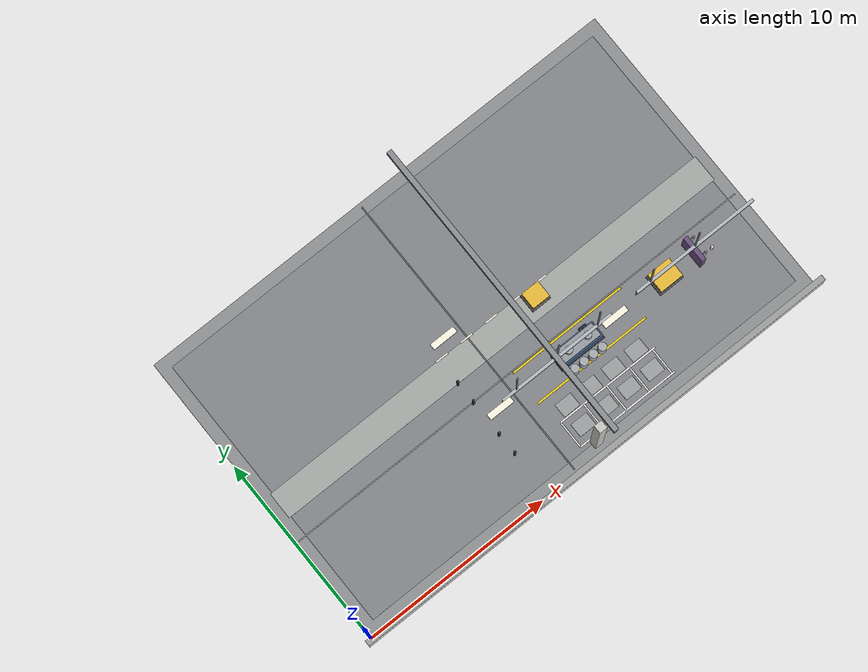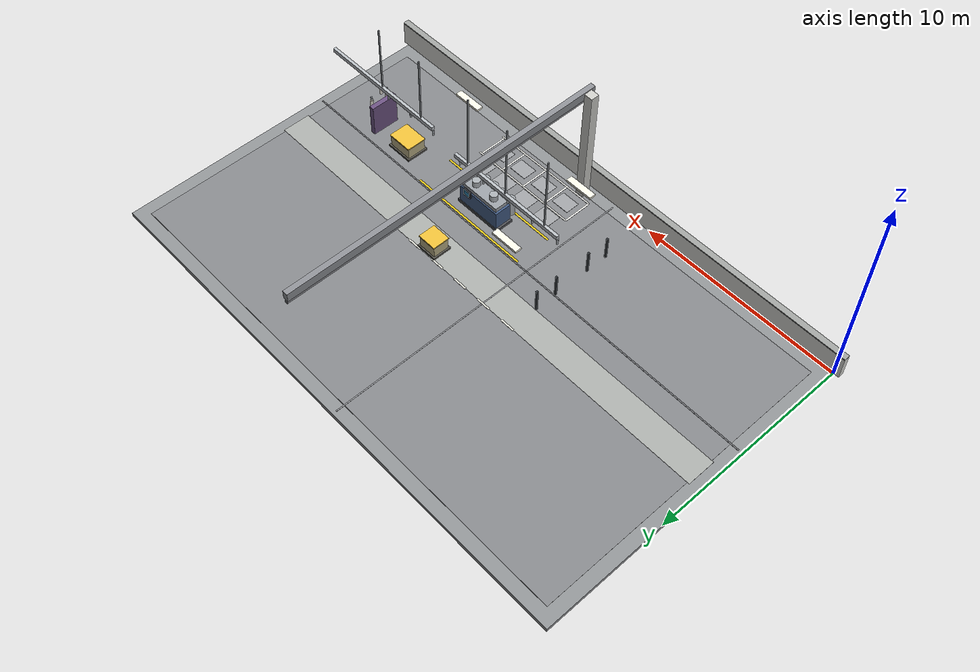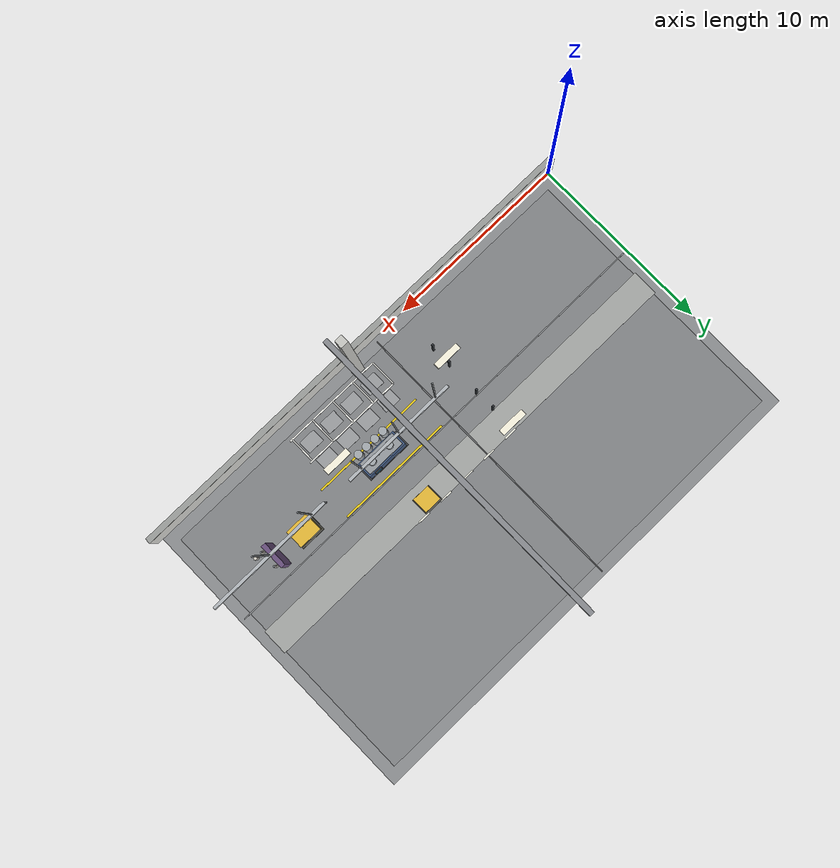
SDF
<sdf version="1.10">
 <world name="textile_mill">
  <model name="floor_slab">
   <static>true</static>
   <pose>13.000 8.000 -0.100 0 0 0</pose>
   <link name="l">
    <collision name="c"><geometry><box><size>26.000 16.000 0.200</size></box></geometry></collision>
    <visual name="v">
     <geometry><box><size>26.000 16.000 0.200</size></box></geometry>
     <material>
      <ambient>0.560 0.570 0.580 1.0</ambient>
      <diffuse>0.560 0.570 0.580 1.0</diffuse>
      <specular>0.18 0.18 0.18 1</specular>
      <pbr><metal><roughness>0.94</roughness><metalness>0.0</metalness></metal></pbr>
     </material>
    </visual>
   </link>
  </model>
  <model name="floor_wear">
   <static>true</static>
   <pose>13.000 8.000 0.005 0 0 0</pose>
   <link name="l">
    <collision name="c"><geometry><box><size>24.800 14.800 0.010</size></box></geometry></collision>
    <visual name="v">
     <geometry><box><size>24.800 14.800 0.010</size></box></geometry>
     <material>
      <ambient>0.520 0.530 0.540 1.0</ambient>
      <diffuse>0.520 0.530 0.540 1.0</diffuse>
      <specular>0.18 0.18 0.18 1</specular>
      <pbr><metal><roughness>0.96</roughness><metalness>0.0</metalness></metal></pbr>
     </material>
    </visual>
   </link>
  </model>
  <model name="wall_south">
   <static>true</static>
   <pose>13.000 -0.140 0.600 0 0 0</pose>
   <link name="l">
    <collision name="c"><geometry><box><size>26.560 0.280 1.200</size></box></geometry></collision>
    <visual name="v">
     <geometry><box><size>26.560 0.280 1.200</size></box></geometry>
     <material>
      <ambient>0.860 0.860 0.840 1.0</ambient>
      <diffuse>0.860 0.860 0.840 1.0</diffuse>
      <specular>0.18 0.18 0.18 1</specular>
      <pbr><metal><roughness>0.9</roughness><metalness>0.0</metalness></metal></pbr>
     </material>
    </visual>
   </link>
  </model>
  <model name="cut_s">
   <static>true</static>
   <pose>13.000 -0.140 1.220 0 0 0</pose>
   <link name="l">
    <collision name="c"><geometry><box><size>26.560 0.300 0.050</size></box></geometry></collision>
    <visual name="v">
     <geometry><box><size>26.560 0.300 0.050</size></box></geometry>
     <material>
      <ambient>0.620 0.630 0.620 1.0</ambient>
      <diffuse>0.620 0.630 0.620 1.0</diffuse>
      <specular>0.18 0.18 0.18 1</specular>
      <pbr><metal><roughness>0.65</roughness><metalness>0.0</metalness></metal></pbr>
     </material>
    </visual>
   </link>
  </model>
  <model name="col_4">
   <static>true</static>
   <pose>13.550 0.550 3.000 0 0 0</pose>
   <link name="l">
    <collision name="c"><geometry><box><size>0.420 0.420 6.000</size></box></geometry></collision>
    <visual name="v">
     <geometry><box><size>0.420 0.420 6.000</size></box></geometry>
     <material>
      <ambient>0.800 0.800 0.780 1.0</ambient>
      <diffuse>0.800 0.800 0.780 1.0</diffuse>
      <specular>0.18 0.18 0.18 1</specular>
      <pbr><metal><roughness>0.85</roughness><metalness>0.0</metalness></metal></pbr>
     </material>
    </visual>
   </link>
  </model>
  <model name="truss_2">
   <static>true</static>
   <pose>14.000 8.000 5.700 0 0 0</pose>
   <link name="l">
    <collision name="c"><geometry><box><size>0.260 16.000 0.400</size></box></geometry></collision>
    <visual name="v">
     <geometry><box><size>0.260 16.000 0.400</size></box></geometry>
     <material>
      <ambient>0.550 0.560 0.580 1.0</ambient>
      <diffuse>0.550 0.560 0.580 1.0</diffuse>
      <specular>0.18 0.18 0.18 1</specular>
      <pbr><metal><roughness>0.4</roughness><metalness>0.6</metalness></metal></pbr>
     </material>
    </visual>
   </link>
  </model>
  <model name="truss_lo_2">
   <static>true</static>
   <pose>14.000 8.000 5.380 0 0 0</pose>
   <link name="l">
    <collision name="c"><geometry><box><size>0.140 16.000 0.160</size></box></geometry></collision>
    <visual name="v">
     <geometry><box><size>0.140 16.000 0.160</size></box></geometry>
     <material>
      <ambient>0.500 0.510 0.530 1.0</ambient>
      <diffuse>0.500 0.510 0.530 1.0</diffuse>
      <specular>0.18 0.18 0.18 1</specular>
      <pbr><metal><roughness>0.65</roughness><metalness>0.6</metalness></metal></pbr>
     </material>
    </visual>
   </link>
  </model>
  <model name="lamp_1_0">
   <static>true</static>
   <pose>10.700 4.000 5.280 0 0 0</pose>
   <link name="l">
    <collision name="c"><geometry><box><size>1.300 0.300 0.100</size></box></geometry></collision>
    <visual name="v">
     <geometry><box><size>1.300 0.300 0.100</size></box></geometry>
     <material>
      <ambient>1.000 0.980 0.900 1.0</ambient>
      <diffuse>1.000 0.980 0.900 1.0</diffuse>
      <specular>0.18 0.18 0.18 1</specular>
      <pbr><metal><roughness>0.3</roughness><metalness>0.0</metalness></metal></pbr>
     </material>
    </visual>
   </link>
  </model>
  <model name="lamp_1_1">
   <static>true</static>
   <pose>10.700 8.000 5.280 0 0 0</pose>
   <link name="l">
    <collision name="c"><geometry><box><size>1.300 0.300 0.100</size></box></geometry></collision>
    <visual name="v">
     <geometry><box><size>1.300 0.300 0.100</size></box></geometry>
     <material>
      <ambient>1.000 0.980 0.900 1.0</ambient>
      <diffuse>1.000 0.980 0.900 1.0</diffuse>
      <specular>0.18 0.18 0.18 1</specular>
      <pbr><metal><roughness>0.3</roughness><metalness>0.0</metalness></metal></pbr>
     </material>
    </visual>
   </link>
  </model>
  <model name="lamp_2_0">
   <static>true</static>
   <pose>17.200 4.000 5.280 0 0 0</pose>
   <link name="l">
    <collision name="c"><geometry><box><size>1.300 0.300 0.100</size></box></geometry></collision>
    <visual name="v">
     <geometry><box><size>1.300 0.300 0.100</size></box></geometry>
     <material>
      <ambient>1.000 0.980 0.900 1.0</ambient>
      <diffuse>1.000 0.980 0.900 1.0</diffuse>
      <specular>0.18 0.18 0.18 1</specular>
      <pbr><metal><roughness>0.3</roughness><metalness>0.0</metalness></metal></pbr>
     </material>
    </visual>
   </link>
  </model>
  <model name="obs_cart_b">
   <static>true</static>
   <pose>15.600 7.500 0.340 0 0 0</pose>
   <link name="l">
    <collision name="c"><geometry><box><size>0.900 0.800 0.680</size></box></geometry></collision>
    <visual name="v">
     <geometry><box><size>0.900 0.800 0.680</size></box></geometry>
     <material>
      <ambient>0.720 0.680 0.520 1.0</ambient>
      <diffuse>0.720 0.680 0.520 1.0</diffuse>
      <specular>0.18 0.18 0.18 1</specular>
      <pbr><metal><roughness>0.85</roughness><metalness>0.0</metalness></metal></pbr>
     </material>
    </visual>
   </link>
  </model>
  <model name="obsband_cart_b">
   <static>true</static>
   <pose>15.600 7.500 0.700 0 0 0</pose>
   <link name="l">
    <collision name="c"><geometry><box><size>0.960 0.860 0.060</size></box></geometry></collision>
    <visual name="v">
     <geometry><box><size>0.960 0.860 0.060</size></box></geometry>
     <material>
      <ambient>0.920 0.740 0.220 1.0</ambient>
      <diffuse>0.920 0.740 0.220 1.0</diffuse>
      <specular>0.18 0.18 0.18 1</specular>
      <pbr><metal><roughness>0.65</roughness><metalness>0.0</metalness></metal></pbr>
     </material>
    </visual>
   </link>
  </model>
  <model name="obsfoot_cart_b">
   <static>true</static>
   <pose>15.600 7.500 0.060 0 0 0</pose>
   <link name="l">
    <collision name="c"><geometry><box><size>1.060 0.960 0.100</size></box></geometry></collision>
    <visual name="v">
     <geometry><box><size>1.060 0.960 0.100</size></box></geometry>
     <material>
      <ambient>0.340 0.330 0.300 1.0</ambient>
      <diffuse>0.340 0.330 0.300 1.0</diffuse>
      <specular>0.18 0.18 0.18 1</specular>
      <pbr><metal><roughness>0.65</roughness><metalness>0.0</metalness></metal></pbr>
     </material>
    </visual>
   </link>
  </model>
  <model name="obs_bale_c">
   <static>true</static>
   <pose>20.800 4.500 0.340 0 0 0</pose>
   <link name="l">
    <collision name="c"><geometry><box><size>1.200 0.950 0.680</size></box></geometry></collision>
    <visual name="v">
     <geometry><box><size>1.200 0.950 0.680</size></box></geometry>
     <material>
      <ambient>0.720 0.680 0.520 1.0</ambient>
      <diffuse>0.720 0.680 0.520 1.0</diffuse>
      <specular>0.18 0.18 0.18 1</specular>
      <pbr><metal><roughness>0.85</roughness><metalness>0.0</metalness></metal></pbr>
     </material>
    </visual>
   </link>
  </model>
  <model name="obsband_bale_c">
   <static>true</static>
   <pose>20.800 4.500 0.700 0 0 0</pose>
   <link name="l">
    <collision name="c"><geometry><box><size>1.260 1.010 0.060</size></box></geometry></collision>
    <visual name="v">
     <geometry><box><size>1.260 1.010 0.060</size></box></geometry>
     <material>
      <ambient>0.920 0.740 0.220 1.0</ambient>
      <diffuse>0.920 0.740 0.220 1.0</diffuse>
      <specular>0.18 0.18 0.18 1</specular>
      <pbr><metal><roughness>0.65</roughness><metalness>0.0</metalness></metal></pbr>
     </material>
    </visual>
   </link>
  </model>
  <model name="obsfoot_bale_c">
   <static>true</static>
   <pose>20.800 4.500 0.060 0 0 0</pose>
   <link name="l">
    <collision name="c"><geometry><box><size>1.360 1.110 0.100</size></box></geometry></collision>
    <visual name="v">
     <geometry><box><size>1.360 1.110 0.100</size></box></geometry>
     <material>
      <ambient>0.340 0.330 0.300 1.0</ambient>
      <diffuse>0.340 0.330 0.300 1.0</diffuse>
      <specular>0.18 0.18 0.18 1</specular>
      <pbr><metal><roughness>0.65</roughness><metalness>0.0</metalness></metal></pbr>
     </material>
    </visual>
   </link>
  </model>
  <model name="cln_drawing_0">
   <static>true</static>
   <pose>14.400 4.500 2.120 0 0 0</pose>
   <link name="l">
    <collision name="c"><geometry><box><size>6.300 0.150 0.200</size></box></geometry></collision>
    <visual name="v">
     <geometry><box><size>6.300 0.150 0.200</size></box></geometry>
     <material>
      <ambient>0.720 0.740 0.760 1.0</ambient>
      <diffuse>0.720 0.740 0.760 1.0</diffuse>
      <specular>0.18 0.18 0.18 1</specular>
      <pbr><metal><roughness>0.35</roughness><metalness>0.5</metalness></metal></pbr>
     </material>
    </visual>
   </link>
  </model>
  <model name="clnz_drawing_0_0">
   <static>true</static>
   <pose>11.250 4.500 1.880 0.0000 0.0000 0.0000</pose>
   <link name="l">
    <collision name="c">
     <geometry><cylinder><radius>0.045</radius><length>0.300</length></cylinder></geometry>
    </collision>
    <visual name="v">
     <geometry><cylinder><radius>0.045</radius><length>0.300</length></cylinder></geometry>
     <material>
      <ambient>0.580 0.600 0.620 1.0</ambient>
      <diffuse>0.580 0.600 0.620 1.0</diffuse>
      <specular>0.18 0.18 0.18 1</specular>
      <pbr><metal><roughness>0.35</roughness><metalness>0.5</metalness></metal></pbr>
     </material>
    </visual>
   </link>
  </model>
  <model name="clnz_drawing_0_1">
   <static>true</static>
   <pose>12.750 4.500 1.880 0.0000 0.0000 0.0000</pose>
   <link name="l">
    <collision name="c">
     <geometry><cylinder><radius>0.045</radius><length>0.300</length></cylinder></geometry>
    </collision>
    <visual name="v">
     <geometry><cylinder><radius>0.045</radius><length>0.300</length></cylinder></geometry>
     <material>
      <ambient>0.580 0.600 0.620 1.0</ambient>
      <diffuse>0.580 0.600 0.620 1.0</diffuse>
      <specular>0.18 0.18 0.18 1</specular>
      <pbr><metal><roughness>0.35</roughness><metalness>0.5</metalness></metal></pbr>
     </material>
    </visual>
   </link>
  </model>
  <model name="clnz_drawing_0_2">
   <static>true</static>
   <pose>14.250 4.500 1.880 0.0000 0.0000 0.0000</pose>
   <link name="l">
    <collision name="c">
     <geometry><cylinder><radius>0.045</radius><length>0.300</length></cylinder></geometry>
    </collision>
    <visual name="v">
     <geometry><cylinder><radius>0.045</radius><length>0.300</length></cylinder></geometry>
     <material>
      <ambient>0.580 0.600 0.620 1.0</ambient>
      <diffuse>0.580 0.600 0.620 1.0</diffuse>
      <specular>0.18 0.18 0.18 1</specular>
      <pbr><metal><roughness>0.35</roughness><metalness>0.5</metalness></metal></pbr>
     </material>
    </visual>
   </link>
  </model>
  <model name="clnz_drawing_0_3">
   <static>true</static>
   <pose>15.750 4.500 1.880 0.0000 0.0000 0.0000</pose>
   <link name="l">
    <collision name="c">
     <geometry><cylinder><radius>0.045</radius><length>0.300</length></cylinder></geometry>
    </collision>
    <visual name="v">
     <geometry><cylinder><radius>0.045</radius><length>0.300</length></cylinder></geometry>
     <material>
      <ambient>0.580 0.600 0.620 1.0</ambient>
      <diffuse>0.580 0.600 0.620 1.0</diffuse>
      <specular>0.18 0.18 0.18 1</specular>
      <pbr><metal><roughness>0.35</roughness><metalness>0.5</metalness></metal></pbr>
     </material>
    </visual>
   </link>
  </model>
  <model name="clnz_drawing_0_4">
   <static>true</static>
   <pose>17.250 4.500 1.880 0.0000 0.0000 0.0000</pose>
   <link name="l">
    <collision name="c">
     <geometry><cylinder><radius>0.045</radius><length>0.300</length></cylinder></geometry>
    </collision>
    <visual name="v">
     <geometry><cylinder><radius>0.045</radius><length>0.300</length></cylinder></geometry>
     <material>
      <ambient>0.580 0.600 0.620 1.0</ambient>
      <diffuse>0.580 0.600 0.620 1.0</diffuse>
      <specular>0.18 0.18 0.18 1</specular>
      <pbr><metal><roughness>0.35</roughness><metalness>0.5</metalness></metal></pbr>
     </material>
    </visual>
   </link>
  </model>
  <model name="clnh_drawing_0_0">
   <static>true</static>
   <pose>12.050 4.500 4.060 0 0 0</pose>
   <link name="l">
    <collision name="c"><geometry><box><size>0.060 0.060 3.880</size></box></geometry></collision>
    <visual name="v">
     <geometry><box><size>0.060 0.060 3.880</size></box></geometry>
     <material>
      <ambient>0.550 0.570 0.590 1.0</ambient>
      <diffuse>0.550 0.570 0.590 1.0</diffuse>
      <specular>0.18 0.18 0.18 1</specular>
      <pbr><metal><roughness>0.65</roughness><metalness>0.6</metalness></metal></pbr>
     </material>
    </visual>
   </link>
  </model>
  <model name="clnh_drawing_0_1">
   <static>true</static>
   <pose>14.400 4.500 4.060 0 0 0</pose>
   <link name="l">
    <collision name="c"><geometry><box><size>0.060 0.060 3.880</size></box></geometry></collision>
    <visual name="v">
     <geometry><box><size>0.060 0.060 3.880</size></box></geometry>
     <material>
      <ambient>0.550 0.570 0.590 1.0</ambient>
      <diffuse>0.550 0.570 0.590 1.0</diffuse>
      <specular>0.18 0.18 0.18 1</specular>
      <pbr><metal><roughness>0.65</roughness><metalness>0.6</metalness></metal></pbr>
     </material>
    </visual>
   </link>
  </model>
  <model name="clnh_drawing_0_2">
   <static>true</static>
   <pose>16.750 4.500 4.060 0 0 0</pose>
   <link name="l">
    <collision name="c"><geometry><box><size>0.060 0.060 3.880</size></box></geometry></collision>
    <visual name="v">
     <geometry><box><size>0.060 0.060 3.880</size></box></geometry>
     <material>
      <ambient>0.550 0.570 0.590 1.0</ambient>
      <diffuse>0.550 0.570 0.590 1.0</diffuse>
      <specular>0.18 0.18 0.18 1</specular>
      <pbr><metal><roughness>0.65</roughness><metalness>0.6</metalness></metal></pbr>
     </material>
    </visual>
   </link>
  </model>
  <model name="cln_roving_0">
   <static>true</static>
   <pose>22.400 4.500 2.620 0 0 0</pose>
   <link name="l">
    <collision name="c"><geometry><box><size>6.800 0.150 0.200</size></box></geometry></collision>
    <visual name="v">
     <geometry><box><size>6.800 0.150 0.200</size></box></geometry>
     <material>
      <ambient>0.720 0.740 0.760 1.0</ambient>
      <diffuse>0.720 0.740 0.760 1.0</diffuse>
      <specular>0.18 0.18 0.18 1</specular>
      <pbr><metal><roughness>0.35</roughness><metalness>0.5</metalness></metal></pbr>
     </material>
    </visual>
   </link>
  </model>
  <model name="clnz_roving_0_0">
   <static>true</static>
   <pose>19.000 4.500 2.380 0.0000 0.0000 0.0000</pose>
   <link name="l">
    <collision name="c">
     <geometry><cylinder><radius>0.045</radius><length>0.300</length></cylinder></geometry>
    </collision>
    <visual name="v">
     <geometry><cylinder><radius>0.045</radius><length>0.300</length></cylinder></geometry>
     <material>
      <ambient>0.580 0.600 0.620 1.0</ambient>
      <diffuse>0.580 0.600 0.620 1.0</diffuse>
      <specular>0.18 0.18 0.18 1</specular>
      <pbr><metal><roughness>0.35</roughness><metalness>0.5</metalness></metal></pbr>
     </material>
    </visual>
   </link>
  </model>
  <model name="clnz_roving_0_1">
   <static>true</static>
   <pose>20.500 4.500 2.380 0.0000 0.0000 0.0000</pose>
   <link name="l">
    <collision name="c">
     <geometry><cylinder><radius>0.045</radius><length>0.300</length></cylinder></geometry>
    </collision>
    <visual name="v">
     <geometry><cylinder><radius>0.045</radius><length>0.300</length></cylinder></geometry>
     <material>
      <ambient>0.580 0.600 0.620 1.0</ambient>
      <diffuse>0.580 0.600 0.620 1.0</diffuse>
      <specular>0.18 0.18 0.18 1</specular>
      <pbr><metal><roughness>0.35</roughness><metalness>0.5</metalness></metal></pbr>
     </material>
    </visual>
   </link>
  </model>
  <model name="clnz_roving_0_2">
   <static>true</static>
   <pose>22.000 4.500 2.380 0.0000 0.0000 0.0000</pose>
   <link name="l">
    <collision name="c">
     <geometry><cylinder><radius>0.045</radius><length>0.300</length></cylinder></geometry>
    </collision>
    <visual name="v">
     <geometry><cylinder><radius>0.045</radius><length>0.300</length></cylinder></geometry>
     <material>
      <ambient>0.580 0.600 0.620 1.0</ambient>
      <diffuse>0.580 0.600 0.620 1.0</diffuse>
      <specular>0.18 0.18 0.18 1</specular>
      <pbr><metal><roughness>0.35</roughness><metalness>0.5</metalness></metal></pbr>
     </material>
    </visual>
   </link>
  </model>
  <model name="clnh_roving_0_0">
   <static>true</static>
   <pose>19.800 4.500 4.310 0 0 0</pose>
   <link name="l">
    <collision name="c"><geometry><box><size>0.060 0.060 3.380</size></box></geometry></collision>
    <visual name="v">
     <geometry><box><size>0.060 0.060 3.380</size></box></geometry>
     <material>
      <ambient>0.550 0.570 0.590 1.0</ambient>
      <diffuse>0.550 0.570 0.590 1.0</diffuse>
      <specular>0.18 0.18 0.18 1</specular>
      <pbr><metal><roughness>0.65</roughness><metalness>0.6</metalness></metal></pbr>
     </material>
    </visual>
   </link>
  </model>
  <model name="clnh_roving_0_1">
   <static>true</static>
   <pose>22.400 4.500 4.310 0 0 0</pose>
   <link name="l">
    <collision name="c"><geometry><box><size>0.060 0.060 3.380</size></box></geometry></collision>
    <visual name="v">
     <geometry><box><size>0.060 0.060 3.380</size></box></geometry>
     <material>
      <ambient>0.550 0.570 0.590 1.0</ambient>
      <diffuse>0.550 0.570 0.590 1.0</diffuse>
      <specular>0.18 0.18 0.18 1</specular>
      <pbr><metal><roughness>0.65</roughness><metalness>0.6</metalness></metal></pbr>
     </material>
    </visual>
   </link>
  </model>
  <model name="line_drawing_4.5_a">
   <static>true</static>
   <pose>15.775 3.600 0.012 0 0 0</pose>
   <link name="l">
    <visual name="v">
     <geometry><box><size>6.350 0.100 0.020</size></box></geometry>
     <material>
      <ambient>0.920 0.800 0.100 1.0</ambient>
      <diffuse>0.920 0.800 0.100 1.0</diffuse>
      <specular>0.18 0.18 0.18 1</specular>
      <pbr><metal><roughness>0.65</roughness><metalness>0.0</metalness></metal></pbr>
     </material>
    </visual>
   </link>
  </model>
  <model name="line_drawing_4.5_b">
   <static>true</static>
   <pose>15.775 5.400 0.012 0 0 0</pose>
   <link name="l">
    <visual name="v">
     <geometry><box><size>6.350 0.100 0.020</size></box></geometry>
     <material>
      <ambient>0.920 0.800 0.100 1.0</ambient>
      <diffuse>0.920 0.800 0.100 1.0</diffuse>
      <specular>0.18 0.18 0.18 1</specular>
      <pbr><metal><roughness>0.65</roughness><metalness>0.0</metalness></metal></pbr>
     </material>
    </visual>
   </link>
  </model>
  <model name="joint_x_2">
   <static>true</static>
   <pose>12.000 8.000 0.010 0 0 0</pose>
   <link name="l">
    <visual name="v">
     <geometry><box><size>0.060 15.600 0.016</size></box></geometry>
     <material>
      <ambient>0.520 0.530 0.540 1.0</ambient>
      <diffuse>0.520 0.530 0.540 1.0</diffuse>
      <specular>0.18 0.18 0.18 1</specular>
      <pbr><metal><roughness>0.65</roughness><metalness>0.0</metalness></metal></pbr>
     </material>
    </visual>
   </link>
  </model>
  <model name="joint_y_1">
   <static>true</static>
   <pose>13.000 5.500 0.010 0 0 0</pose>
   <link name="l">
    <visual name="v">
     <geometry><box><size>25.600 0.060 0.016</size></box></geometry>
     <material>
      <ambient>0.520 0.530 0.540 1.0</ambient>
      <diffuse>0.520 0.530 0.540 1.0</diffuse>
      <specular>0.18 0.18 0.18 1</specular>
      <pbr><metal><roughness>0.65</roughness><metalness>0.0</metalness></metal></pbr>
     </material>
    </visual>
   </link>
  </model>
  <model name="walkway_0">
   <static>true</static>
   <pose>13.000 7.300 0.008 0 0 0</pose>
   <link name="l">
    <visual name="v">
     <geometry><box><size>25.000 1.400 0.014</size></box></geometry>
     <material>
      <ambient>0.660 0.670 0.660 1.0</ambient>
      <diffuse>0.660 0.670 0.660 1.0</diffuse>
      <specular>0.18 0.18 0.18 1</specular>
      <pbr><metal><roughness>0.88</roughness><metalness>0.0</metalness></metal></pbr>
     </material>
    </visual>
   </link>
  </model>
  <model name="dash_6">
   <static>true</static>
   <pose>10.500 8.000 0.012 0 0 0</pose>
   <link name="l">
    <visual name="v">
     <geometry><box><size>0.700 0.090 0.020</size></box></geometry>
     <material>
      <ambient>0.900 0.900 0.860 1.0</ambient>
      <diffuse>0.900 0.900 0.860 1.0</diffuse>
      <specular>0.18 0.18 0.18 1</specular>
      <pbr><metal><roughness>0.65</roughness><metalness>0.0</metalness></metal></pbr>
     </material>
    </visual>
   </link>
  </model>
  <model name="dash_7">
   <static>true</static>
   <pose>11.950 8.000 0.012 0 0 0</pose>
   <link name="l">
    <visual name="v">
     <geometry><box><size>0.700 0.090 0.020</size></box></geometry>
     <material>
      <ambient>0.900 0.900 0.860 1.0</ambient>
      <diffuse>0.900 0.900 0.860 1.0</diffuse>
      <specular>0.18 0.18 0.18 1</specular>
      <pbr><metal><roughness>0.65</roughness><metalness>0.0</metalness></metal></pbr>
     </material>
    </visual>
   </link>
  </model>
  <model name="dash_8">
   <static>true</static>
   <pose>13.400 8.000 0.012 0 0 0</pose>
   <link name="l">
    <visual name="v">
     <geometry><box><size>0.700 0.090 0.020</size></box></geometry>
     <material>
      <ambient>0.900 0.900 0.860 1.0</ambient>
      <diffuse>0.900 0.900 0.860 1.0</diffuse>
      <specular>0.18 0.18 0.18 1</specular>
      <pbr><metal><roughness>0.65</roughness><metalness>0.0</metalness></metal></pbr>
     </material>
    </visual>
   </link>
  </model>
  <model name="dash_9">
   <static>true</static>
   <pose>14.850 8.000 0.012 0 0 0</pose>
   <link name="l">
    <visual name="v">
     <geometry><box><size>0.700 0.090 0.020</size></box></geometry>
     <material>
      <ambient>0.900 0.900 0.860 1.0</ambient>
      <diffuse>0.900 0.900 0.860 1.0</diffuse>
      <specular>0.18 0.18 0.18 1</specular>
      <pbr><metal><roughness>0.65</roughness><metalness>0.0</metalness></metal></pbr>
     </material>
    </visual>
   </link>
  </model>
  <model name="dash_10">
   <static>true</static>
   <pose>16.300 8.000 0.012 0 0 0</pose>
   <link name="l">
    <visual name="v">
     <geometry><box><size>0.700 0.090 0.020</size></box></geometry>
     <material>
      <ambient>0.900 0.900 0.860 1.0</ambient>
      <diffuse>0.900 0.900 0.860 1.0</diffuse>
      <specular>0.18 0.18 0.18 1</specular>
      <pbr><metal><roughness>0.65</roughness><metalness>0.0</metalness></metal></pbr>
     </material>
    </visual>
   </link>
  </model>
  <model name="park_line_a">
   <static>true</static>
   <pose>15.638 0.830 0.012 0 0 0</pose>
   <link name="l">
    <visual name="v">
     <geometry><box><size>5.550 0.080 0.020</size></box></geometry>
     <material>
      <ambient>0.940 0.940 0.920 1.0</ambient>
      <diffuse>0.940 0.940 0.920 1.0</diffuse>
      <specular>0.18 0.18 0.18 1</specular>
      <pbr><metal><roughness>0.65</roughness><metalness>0.0</metalness></metal></pbr>
     </material>
    </visual>
   </link>
  </model>
  <model name="park_line_b">
   <static>true</static>
   <pose>15.638 2.270 0.012 0 0 0</pose>
   <link name="l">
    <visual name="v">
     <geometry><box><size>5.550 0.080 0.020</size></box></geometry>
     <material>
      <ambient>0.940 0.940 0.920 1.0</ambient>
      <diffuse>0.940 0.940 0.920 1.0</diffuse>
      <specular>0.18 0.18 0.18 1</specular>
      <pbr><metal><roughness>0.65</roughness><metalness>0.0</metalness></metal></pbr>
     </material>
    </visual>
   </link>
  </model>
  <model name="park_tick_0">
   <static>true</static>
   <pose>12.863 1.550 0.012 0 0 0</pose>
   <link name="l">
    <visual name="v">
     <geometry><box><size>0.080 1.440 0.020</size></box></geometry>
     <material>
      <ambient>0.940 0.940 0.920 1.0</ambient>
      <diffuse>0.940 0.940 0.920 1.0</diffuse>
      <specular>0.18 0.18 0.18 1</specular>
      <pbr><metal><roughness>0.65</roughness><metalness>0.0</metalness></metal></pbr>
     </material>
    </visual>
   </link>
  </model>
  <model name="park_tick_1">
   <static>true</static>
   <pose>14.213 1.550 0.012 0 0 0</pose>
   <link name="l">
    <visual name="v">
     <geometry><box><size>0.080 1.440 0.020</size></box></geometry>
     <material>
      <ambient>0.940 0.940 0.920 1.0</ambient>
      <diffuse>0.940 0.940 0.920 1.0</diffuse>
      <specular>0.18 0.18 0.18 1</specular>
      <pbr><metal><roughness>0.65</roughness><metalness>0.0</metalness></metal></pbr>
     </material>
    </visual>
   </link>
  </model>
  <model name="park_tick_2">
   <static>true</static>
   <pose>15.562 1.550 0.012 0 0 0</pose>
   <link name="l">
    <visual name="v">
     <geometry><box><size>0.080 1.440 0.020</size></box></geometry>
     <material>
      <ambient>0.940 0.940 0.920 1.0</ambient>
      <diffuse>0.940 0.940 0.920 1.0</diffuse>
      <specular>0.18 0.18 0.18 1</specular>
      <pbr><metal><roughness>0.65</roughness><metalness>0.0</metalness></metal></pbr>
     </material>
    </visual>
   </link>
  </model>
  <model name="park_tick_3">
   <static>true</static>
   <pose>16.913 1.550 0.012 0 0 0</pose>
   <link name="l">
    <visual name="v">
     <geometry><box><size>0.080 1.440 0.020</size></box></geometry>
     <material>
      <ambient>0.940 0.940 0.920 1.0</ambient>
      <diffuse>0.940 0.940 0.920 1.0</diffuse>
      <specular>0.18 0.18 0.18 1</specular>
      <pbr><metal><roughness>0.65</roughness><metalness>0.0</metalness></metal></pbr>
     </material>
    </visual>
   </link>
  </model>
  <model name="park_tick_4">
   <static>true</static>
   <pose>18.263 1.550 0.012 0 0 0</pose>
   <link name="l">
    <visual name="v">
     <geometry><box><size>0.080 1.440 0.020</size></box></geometry>
     <material>
      <ambient>0.940 0.940 0.920 1.0</ambient>
      <diffuse>0.940 0.940 0.920 1.0</diffuse>
      <specular>0.18 0.18 0.18 1</specular>
      <pbr><metal><roughness>0.65</roughness><metalness>0.0</metalness></metal></pbr>
     </material>
    </visual>
   </link>
  </model>
  <model name="carding_machine_0_post_a_r">
   <static>true</static>
   <pose>10.300 2.440 0.600 0 0 0</pose>
   <link name="l">
    <collision name="c"><geometry><box><size>0.100 0.100 1.200</size></box></geometry></collision>
    <visual name="v">
     <geometry><box><size>0.100 0.100 1.200</size></box></geometry>
     <material>
      <ambient>0.220 0.240 0.260 1.0</ambient>
      <diffuse>0.220 0.240 0.260 1.0</diffuse>
      <specular>0.18 0.18 0.18 1</specular>
      <pbr><metal><roughness>0.65</roughness><metalness>0.5</metalness></metal></pbr>
     </material>
    </visual>
   </link>
  </model>
  <model name="carding_machine_0_post_b_r">
   <static>true</static>
   <pose>10.300 3.560 0.600 0 0 0</pose>
   <link name="l">
    <collision name="c"><geometry><box><size>0.100 0.100 1.200</size></box></geometry></collision>
    <visual name="v">
     <geometry><box><size>0.100 0.100 1.200</size></box></geometry>
     <material>
      <ambient>0.220 0.240 0.260 1.0</ambient>
      <diffuse>0.220 0.240 0.260 1.0</diffuse>
      <specular>0.18 0.18 0.18 1</specular>
      <pbr><metal><roughness>0.65</roughness><metalness>0.5</metalness></metal></pbr>
     </material>
    </visual>
   </link>
  </model>
  <model name="carding_machine_1_post_a_r">
   <static>true</static>
   <pose>10.300 5.440 0.600 0 0 0</pose>
   <link name="l">
    <collision name="c"><geometry><box><size>0.100 0.100 1.200</size></box></geometry></collision>
    <visual name="v">
     <geometry><box><size>0.100 0.100 1.200</size></box></geometry>
     <material>
      <ambient>0.220 0.240 0.260 1.0</ambient>
      <diffuse>0.220 0.240 0.260 1.0</diffuse>
      <specular>0.18 0.18 0.18 1</specular>
      <pbr><metal><roughness>0.65</roughness><metalness>0.5</metalness></metal></pbr>
     </material>
    </visual>
   </link>
  </model>
  <model name="carding_machine_1_post_b_r">
   <static>true</static>
   <pose>10.300 6.560 0.600 0 0 0</pose>
   <link name="l">
    <collision name="c"><geometry><box><size>0.100 0.100 1.200</size></box></geometry></collision>
    <visual name="v">
     <geometry><box><size>0.100 0.100 1.200</size></box></geometry>
     <material>
      <ambient>0.220 0.240 0.260 1.0</ambient>
      <diffuse>0.220 0.240 0.260 1.0</diffuse>
      <specular>0.18 0.18 0.18 1</specular>
      <pbr><metal><roughness>0.65</roughness><metalness>0.5</metalness></metal></pbr>
     </material>
    </visual>
   </link>
  </model>
  <model name="drawing_machine_0_plinth">
   <static>true</static>
   <pose>15.650 4.500 0.080 0 0 0</pose>
   <link name="l">
    <collision name="c"><geometry><box><size>2.500 0.900 0.160</size></box></geometry></collision>
    <visual name="v">
     <geometry><box><size>2.500 0.900 0.160</size></box></geometry>
     <material>
      <ambient>0.300 0.310 0.330 1.0</ambient>
      <diffuse>0.300 0.310 0.330 1.0</diffuse>
      <specular>0.18 0.18 0.18 1</specular>
      <pbr><metal><roughness>0.65</roughness><metalness>0.4</metalness></metal></pbr>
     </material>
    </visual>
   </link>
  </model>
  <model name="drawing_machine_0_body">
   <static>true</static>
   <pose>15.650 4.500 0.620 0 0 0</pose>
   <link name="l">
    <collision name="c"><geometry><box><size>2.300 0.840 0.920</size></box></geometry></collision>
    <visual name="v">
     <geometry><box><size>2.300 0.840 0.920</size></box></geometry>
     <material>
      <ambient>0.260 0.360 0.520 1.0</ambient>
      <diffuse>0.260 0.360 0.520 1.0</diffuse>
      <specular>0.18 0.18 0.18 1</specular>
      <pbr><metal><roughness>0.45</roughness><metalness>0.25</metalness></metal></pbr>
     </material>
    </visual>
   </link>
  </model>
  <model name="drawing_machine_0_draft">
   <static>true</static>
   <pose>15.650 4.500 1.180 0 0 0</pose>
   <link name="l">
    <collision name="c"><geometry><box><size>2.100 0.700 0.220</size></box></geometry></collision>
    <visual name="v">
     <geometry><box><size>2.100 0.700 0.220</size></box></geometry>
     <material>
      <ambient>0.600 0.620 0.640 1.0</ambient>
      <diffuse>0.600 0.620 0.640 1.0</diffuse>
      <specular>0.18 0.18 0.18 1</specular>
      <pbr><metal><roughness>0.3</roughness><metalness>0.6</metalness></metal></pbr>
     </material>
    </visual>
   </link>
  </model>
  <model name="drawing_machine_0_head_0">
   <static>true</static>
   <pose>15.100 4.500 1.420 0.0000 0.0000 0.0000</pose>
   <link name="l">
    <collision name="c">
     <geometry><cylinder><radius>0.190</radius><length>0.360</length></cylinder></geometry>
    </collision>
    <visual name="v">
     <geometry><cylinder><radius>0.190</radius><length>0.360</length></cylinder></geometry>
     <material>
      <ambient>0.660 0.680 0.700 1.0</ambient>
      <diffuse>0.660 0.680 0.700 1.0</diffuse>
      <specular>0.18 0.18 0.18 1</specular>
      <pbr><metal><roughness>0.3</roughness><metalness>0.6</metalness></metal></pbr>
     </material>
    </visual>
   </link>
  </model>
  <model name="drawing_machine_0_head_1">
   <static>true</static>
   <pose>16.200 4.500 1.420 0.0000 0.0000 0.0000</pose>
   <link name="l">
    <collision name="c">
     <geometry><cylinder><radius>0.190</radius><length>0.360</length></cylinder></geometry>
    </collision>
    <visual name="v">
     <geometry><cylinder><radius>0.190</radius><length>0.360</length></cylinder></geometry>
     <material>
      <ambient>0.660 0.680 0.700 1.0</ambient>
      <diffuse>0.660 0.680 0.700 1.0</diffuse>
      <specular>0.18 0.18 0.18 1</specular>
      <pbr><metal><roughness>0.3</roughness><metalness>0.6</metalness></metal></pbr>
     </material>
    </visual>
   </link>
  </model>
  <model name="drawing_machine_0_creel_0">
   <static>true</static>
   <pose>14.850 3.720 0.480 0.0000 0.0000 0.0000</pose>
   <link name="l">
    <collision name="c">
     <geometry><cylinder><radius>0.210</radius><length>0.920</length></cylinder></geometry>
    </collision>
    <visual name="v">
     <geometry><cylinder><radius>0.210</radius><length>0.920</length></cylinder></geometry>
     <material>
      <ambient>0.660 0.680 0.700 1.0</ambient>
      <diffuse>0.660 0.680 0.700 1.0</diffuse>
      <specular>0.18 0.18 0.18 1</specular>
      <pbr><metal><roughness>0.65</roughness><metalness>0.0</metalness></metal></pbr>
     </material>
    </visual>
   </link>
  </model>
  <model name="drawing_machine_0_creel_1">
   <static>true</static>
   <pose>15.380 3.720 0.480 0.0000 0.0000 0.0000</pose>
   <link name="l">
    <collision name="c">
     <geometry><cylinder><radius>0.210</radius><length>0.920</length></cylinder></geometry>
    </collision>
    <visual name="v">
     <geometry><cylinder><radius>0.210</radius><length>0.920</length></cylinder></geometry>
     <material>
      <ambient>0.660 0.680 0.700 1.0</ambient>
      <diffuse>0.660 0.680 0.700 1.0</diffuse>
      <specular>0.18 0.18 0.18 1</specular>
      <pbr><metal><roughness>0.65</roughness><metalness>0.0</metalness></metal></pbr>
     </material>
    </visual>
   </link>
  </model>
  <model name="drawing_machine_0_creel_2">
   <static>true</static>
   <pose>15.920 3.720 0.480 0.0000 0.0000 0.0000</pose>
   <link name="l">
    <collision name="c">
     <geometry><cylinder><radius>0.210</radius><length>0.920</length></cylinder></geometry>
    </collision>
    <visual name="v">
     <geometry><cylinder><radius>0.210</radius><length>0.920</length></cylinder></geometry>
     <material>
      <ambient>0.660 0.680 0.700 1.0</ambient>
      <diffuse>0.660 0.680 0.700 1.0</diffuse>
      <specular>0.18 0.18 0.18 1</specular>
      <pbr><metal><roughness>0.65</roughness><metalness>0.0</metalness></metal></pbr>
     </material>
    </visual>
   </link>
  </model>
  <model name="drawing_machine_0_creel_3">
   <static>true</static>
   <pose>16.450 3.720 0.480 0.0000 0.0000 0.0000</pose>
   <link name="l">
    <collision name="c">
     <geometry><cylinder><radius>0.210</radius><length>0.920</length></cylinder></geometry>
    </collision>
    <visual name="v">
     <geometry><cylinder><radius>0.210</radius><length>0.920</length></cylinder></geometry>
     <material>
      <ambient>0.660 0.680 0.700 1.0</ambient>
      <diffuse>0.660 0.680 0.700 1.0</diffuse>
      <specular>0.18 0.18 0.18 1</specular>
      <pbr><metal><roughness>0.65</roughness><metalness>0.0</metalness></metal></pbr>
     </material>
    </visual>
   </link>
  </model>
  <model name="drawing_machine_0_panel">
   <static>true</static>
   <pose>16.270 4.960 1.020 0 0 0</pose>
   <link name="l">
    <collision name="c"><geometry><box><size>0.420 0.100 0.360</size></box></geometry></collision>
    <visual name="v">
     <geometry><box><size>0.420 0.100 0.360</size></box></geometry>
     <material>
      <ambient>0.160 0.170 0.190 1.0</ambient>
      <diffuse>0.160 0.170 0.190 1.0</diffuse>
      <specular>0.18 0.18 0.18 1</specular>
      <pbr><metal><roughness>0.65</roughness><metalness>0.0</metalness></metal></pbr>
     </material>
    </visual>
   </link>
  </model>
  <model name="drawing_machine_0_screen">
   <static>true</static>
   <pose>16.270 5.010 1.040 0 0 0</pose>
   <link name="l">
    <collision name="c"><geometry><box><size>0.320 0.030 0.240</size></box></geometry></collision>
    <visual name="v">
     <geometry><box><size>0.320 0.030 0.240</size></box></geometry>
     <material>
      <ambient>0.200 0.550 0.720 1.0</ambient>
      <diffuse>0.200 0.550 0.720 1.0</diffuse>
      <specular>0.18 0.18 0.18 1</specular>
      <pbr><metal><roughness>0.65</roughness><metalness>0.0</metalness></metal></pbr>
     </material>
    </visual>
   </link>
  </model>
  <model name="roving_machine_0_bob_0_0">
   <static>true</static>
   <pose>22.700 4.060 1.740 0.0000 0.0000 0.0000</pose>
   <link name="l">
    <collision name="c">
     <geometry><cylinder><radius>0.075</radius><length>0.440</length></cylinder></geometry>
    </collision>
    <visual name="v">
     <geometry><cylinder><radius>0.075</radius><length>0.440</length></cylinder></geometry>
     <material>
      <ambient>0.860 0.840 0.800 1.0</ambient>
      <diffuse>0.860 0.840 0.800 1.0</diffuse>
      <specular>0.18 0.18 0.18 1</specular>
      <pbr><metal><roughness>0.65</roughness><metalness>0.0</metalness></metal></pbr>
     </material>
    </visual>
   </link>
  </model>
  <model name="roving_machine_0_fly_0_0">
   <static>true</static>
   <pose>22.700 4.060 2.020 0.0000 0.0000 0.0000</pose>
   <link name="l">
    <collision name="c">
     <geometry><cylinder><radius>0.045</radius><length>0.260</length></cylinder></geometry>
    </collision>
    <visual name="v">
     <geometry><cylinder><radius>0.045</radius><length>0.260</length></cylinder></geometry>
     <material>
      <ambient>0.550 0.570 0.600 1.0</ambient>
      <diffuse>0.550 0.570 0.600 1.0</diffuse>
      <specular>0.18 0.18 0.18 1</specular>
      <pbr><metal><roughness>0.25</roughness><metalness>0.7</metalness></metal></pbr>
     </material>
    </visual>
   </link>
  </model>
  <model name="roving_machine_0_bob_0_1">
   <static>true</static>
   <pose>23.100 4.060 1.740 0.0000 0.0000 0.0000</pose>
   <link name="l">
    <collision name="c">
     <geometry><cylinder><radius>0.075</radius><length>0.440</length></cylinder></geometry>
    </collision>
    <visual name="v">
     <geometry><cylinder><radius>0.075</radius><length>0.440</length></cylinder></geometry>
     <material>
      <ambient>0.860 0.840 0.800 1.0</ambient>
      <diffuse>0.860 0.840 0.800 1.0</diffuse>
      <specular>0.18 0.18 0.18 1</specular>
      <pbr><metal><roughness>0.65</roughness><metalness>0.0</metalness></metal></pbr>
     </material>
    </visual>
   </link>
  </model>
  <model name="roving_machine_0_bob_1_0">
   <static>true</static>
   <pose>22.700 4.940 1.740 0.0000 0.0000 0.0000</pose>
   <link name="l">
    <collision name="c">
     <geometry><cylinder><radius>0.075</radius><length>0.440</length></cylinder></geometry>
    </collision>
    <visual name="v">
     <geometry><cylinder><radius>0.075</radius><length>0.440</length></cylinder></geometry>
     <material>
      <ambient>0.860 0.840 0.800 1.0</ambient>
      <diffuse>0.860 0.840 0.800 1.0</diffuse>
      <specular>0.18 0.18 0.18 1</specular>
      <pbr><metal><roughness>0.65</roughness><metalness>0.0</metalness></metal></pbr>
     </material>
    </visual>
   </link>
  </model>
  <model name="roving_machine_0_fly_1_0">
   <static>true</static>
   <pose>22.700 4.940 2.020 0.0000 0.0000 0.0000</pose>
   <link name="l">
    <collision name="c">
     <geometry><cylinder><radius>0.045</radius><length>0.260</length></cylinder></geometry>
    </collision>
    <visual name="v">
     <geometry><cylinder><radius>0.045</radius><length>0.260</length></cylinder></geometry>
     <material>
      <ambient>0.550 0.570 0.600 1.0</ambient>
      <diffuse>0.550 0.570 0.600 1.0</diffuse>
      <specular>0.18 0.18 0.18 1</specular>
      <pbr><metal><roughness>0.25</roughness><metalness>0.7</metalness></metal></pbr>
     </material>
    </visual>
   </link>
  </model>
  <model name="roving_machine_0_end_a">
   <static>true</static>
   <pose>22.450 4.500 1.000 0 0 0</pose>
   <link name="l">
    <collision name="c"><geometry><box><size>0.240 1.360 1.600</size></box></geometry></collision>
    <visual name="v">
     <geometry><box><size>0.240 1.360 1.600</size></box></geometry>
     <material>
      <ambient>0.420 0.320 0.500 1.0</ambient>
      <diffuse>0.420 0.320 0.500 1.0</diffuse>
      <specular>0.18 0.18 0.18 1</specular>
      <pbr><metal><roughness>0.65</roughness><metalness>0.0</metalness></metal></pbr>
     </material>
    </visual>
   </link>
  </model>
  <model name="park_pad_0">
   <static>true</static>
   <pose>13.613 1.550 0.014 0 0 0</pose>
   <link name="l">
    <visual name="v">
     <geometry><box><size>0.920 0.720 0.020</size></box></geometry>
     <material>
      <ambient>0.620 0.630 0.640 1.0</ambient>
      <diffuse>0.620 0.630 0.640 1.0</diffuse>
      <specular>0.18 0.18 0.18 1</specular>
      <pbr><metal><roughness>0.9</roughness><metalness>0.0</metalness></metal></pbr>
     </material>
    </visual>
   </link>
  </model>
  <model name="park_pad_1">
   <static>true</static>
   <pose>14.963 1.550 0.014 0 0 0</pose>
   <link name="l">
    <visual name="v">
     <geometry><box><size>0.920 0.720 0.020</size></box></geometry>
     <material>
      <ambient>0.620 0.630 0.640 1.0</ambient>
      <diffuse>0.620 0.630 0.640 1.0</diffuse>
      <specular>0.18 0.18 0.18 1</specular>
      <pbr><metal><roughness>0.9</roughness><metalness>0.0</metalness></metal></pbr>
     </material>
    </visual>
   </link>
  </model>
  <model name="park_pad_2">
   <static>true</static>
   <pose>16.312 1.550 0.014 0 0 0</pose>
   <link name="l">
    <visual name="v">
     <geometry><box><size>0.920 0.720 0.020</size></box></geometry>
     <material>
      <ambient>0.620 0.630 0.640 1.0</ambient>
      <diffuse>0.620 0.630 0.640 1.0</diffuse>
      <specular>0.18 0.18 0.18 1</specular>
      <pbr><metal><roughness>0.9</roughness><metalness>0.0</metalness></metal></pbr>
     </material>
    </visual>
   </link>
  </model>
  <model name="park_pad_3">
   <static>true</static>
   <pose>17.663 1.550 0.014 0 0 0</pose>
   <link name="l">
    <visual name="v">
     <geometry><box><size>0.920 0.720 0.020</size></box></geometry>
     <material>
      <ambient>0.620 0.630 0.640 1.0</ambient>
      <diffuse>0.620 0.630 0.640 1.0</diffuse>
      <specular>0.18 0.18 0.18 1</specular>
      <pbr><metal><roughness>0.9</roughness><metalness>0.0</metalness></metal></pbr>
     </material>
    </visual>
   </link>
  </model>
  <model name="park_pad_4">
   <static>true</static>
   <pose>13.613 2.700 0.014 0 0 0</pose>
   <link name="l">
    <visual name="v">
     <geometry><box><size>0.920 0.720 0.020</size></box></geometry>
     <material>
      <ambient>0.620 0.630 0.640 1.0</ambient>
      <diffuse>0.620 0.630 0.640 1.0</diffuse>
      <specular>0.18 0.18 0.18 1</specular>
      <pbr><metal><roughness>0.9</roughness><metalness>0.0</metalness></metal></pbr>
     </material>
    </visual>
   </link>
  </model>
  <model name="park_pad_5">
   <static>true</static>
   <pose>14.963 2.700 0.014 0 0 0</pose>
   <link name="l">
    <visual name="v">
     <geometry><box><size>0.920 0.720 0.020</size></box></geometry>
     <material>
      <ambient>0.620 0.630 0.640 1.0</ambient>
      <diffuse>0.620 0.630 0.640 1.0</diffuse>
      <specular>0.18 0.18 0.18 1</specular>
      <pbr><metal><roughness>0.9</roughness><metalness>0.0</metalness></metal></pbr>
     </material>
    </visual>
   </link>
  </model>
  <model name="park_pad_6">
   <static>true</static>
   <pose>16.312 2.700 0.014 0 0 0</pose>
   <link name="l">
    <visual name="v">
     <geometry><box><size>0.920 0.720 0.020</size></box></geometry>
     <material>
      <ambient>0.620 0.630 0.640 1.0</ambient>
      <diffuse>0.620 0.630 0.640 1.0</diffuse>
      <specular>0.18 0.18 0.18 1</specular>
      <pbr><metal><roughness>0.9</roughness><metalness>0.0</metalness></metal></pbr>
     </material>
    </visual>
   </link>
  </model>
  <model name="park_pad_7">
   <static>true</static>
   <pose>17.663 2.700 0.014 0 0 0</pose>
   <link name="l">
    <visual name="v">
     <geometry><box><size>0.920 0.720 0.020</size></box></geometry>
     <material>
      <ambient>0.620 0.630 0.640 1.0</ambient>
      <diffuse>0.620 0.630 0.640 1.0</diffuse>
      <specular>0.18 0.18 0.18 1</specular>
      <pbr><metal><roughness>0.9</roughness><metalness>0.0</metalness></metal></pbr>
     </material>
    </visual>
   </link>
  </model>
  <model name="view_top">
   <static>true</static>
   <pose>13.0 8.0 23.0 0 1.5708 1.5708</pose>
   <link name="l">
    <sensor name="cam" type="camera">
     <camera>
      <horizontal_fov>1.18</horizontal_fov>
      <image><width>1280</width><height>800</height></image>
      <clip><near>0.1</near><far>200</far></clip>
     </camera>
     <always_on>0</always_on>
     <update_rate>2</update_rate>
     <visualize>false</visualize>
     <topic>view_top/image</topic>
    </sensor>
   </link>
  </model>
 </world>
</sdf>
